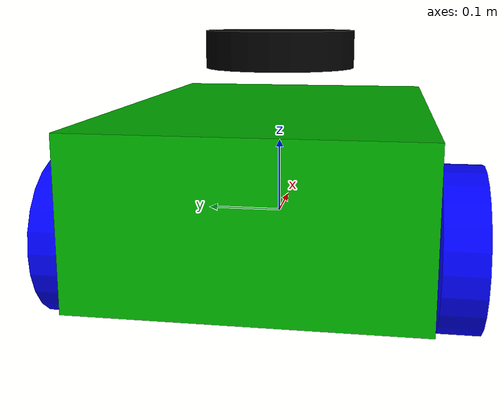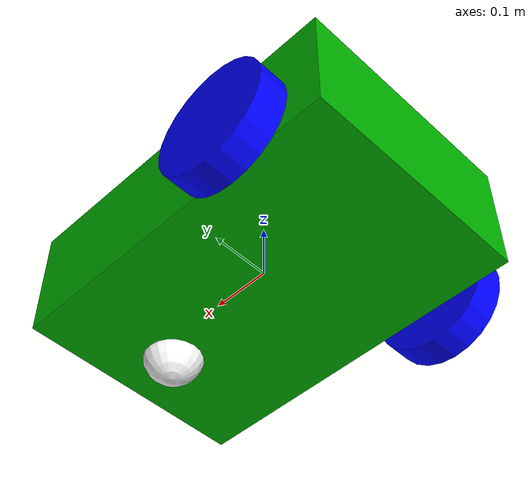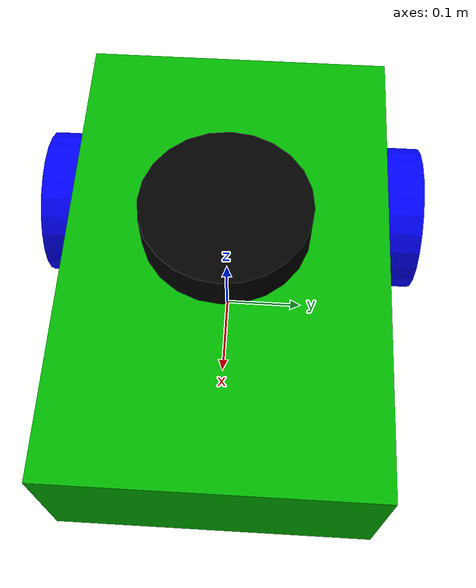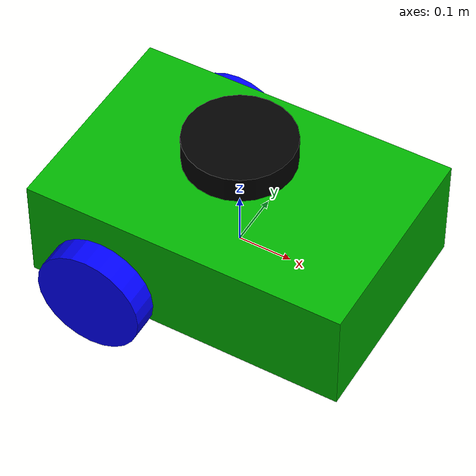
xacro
<?xml version="1.0"?>

<robot xmlns:xacro="http://www.ros.org/wiki/xacro" name="roboct" >

<!---materials definitions-->
<material name="green">
    <color rgba="0.0 0.7 0.0 1.0"/>
</material>

<material name="blue">
<color rgba="0.0 0.0 1.0 1.0"/>
</material>

<material name="red">
    <color rgba="1.0 0.0 0.0 1.0"/>
</material>

<material name="white">
    <color rgba="1.0 1.0 1.0 1.0"/>
</material>

<material name="black">
    <color rgba="0.0 0.0 0.0 1.0"/>
</material>

<!-- Define some commonly used intertial properties  -->
  <xacro:macro name="box_inertia" params="m w h d">
    <inertial>
      <origin xyz="0 0 0" rpy="${pi/2} 0 ${pi/2}"/>
      <mass value="${m}"/>
      <inertia ixx="${(m/12) * (h*h + d*d)}" ixy="0.0" ixz="0.0" iyy="${(m/12) * (w*w + d*d)}" iyz="0.0" izz="${(m/12) * (w*w + h*h)}"/>
    </inertial>
  </xacro:macro>

<!--- All Robots links with their full properties-->

<!--Base_link properties-->
<link name="base_footprint"/>

<link name="base_link">
    <visual>
        <geometry>
            <box size="0.6 0.4 0.2"/>
        </geometry>
        <origin xyz="0.0 0.0 0.05" rpy="0.0 0.0 0.0"/>
        <material name="green"/>
    </visual>

    <collision>
        <geometry>
            <box size="0.6 0.4 0.2"/>
        </geometry>
        <origin xyz="0.0 0.0 0.05" rpy="0.0 0.0 0.0"/>
    </collision>
    <xacro:box_inertia m="1.0" w="0.4" d="0.6" h="0.2"/>
</link>

<joint name="base_link_footprint_joint" type="fixed">
    <origin xyz="0.0 0.0 -0.15" rpy="0.0 0.0 0.0"/>
    <parent link="base_link"/>
    <child link="base_footprint"/>
</joint>

<!--Lidar properties-->
<link name = "lidar">
    <visual>
            <geometry>
                <cylinder radius="0.1" length="0.05"/>
            </geometry>
            <origin xyz="0.0 0.0 0.0" rpy="0.0 0.0 0.0"/>
            <material name="black"/>
    </visual>
    <collision>
        <geometry>
            <cylinder radius="0.1" length="0.05"/>
        </geometry>
    </collision>
    <inertial>
            <mass value="1.0"/>
            <origin xyz="0 0 0"/>
            <inertia ixx="0.001458" iyy="0.001458" izz="0.00125" ixy="0.0" ixz="0.0" iyz="0.0"/>
    </inertial>
</link>

<joint name="base_lidar" type="fixed">
    <origin xyz="0.0 0.0 0.225" rpy="0.0 0.0 0.0"/>
    <parent link="base_link"/>
    <child link="lidar"/>
    <axis xyz="0.0 0.0 0.0"/>
    <limit lower="0.0" upper="0.0" effort="0.0" velocity="0.0"/>
</joint>

<!--Left Wheel properties-->
<link name = "left_wheel">
    <visual>
            <geometry>
                <cylinder radius="0.1" length="0.05"/>
            </geometry>
            <origin xyz="0.0 0.0 0.0" rpy="1.57 0.0 0.0"/>
            <material name="blue"/>
    </visual>

    <collision>
        <geometry>
            <cylinder radius="0.1" length="0.05"/>
        </geometry>
        <origin xyz="0.0 0.0 0.0" rpy="1.57 0.0 0.0"/>
    </collision>
    <inertial>
            <mass value="1.0"/>
            <origin xyz="0 0 0"/>
            <inertia ixx="0.001458" iyy="0.001458" izz="0.00125" ixy="0.0" ixz="0.0" iyz="0.0"/>
    </inertial>
</link>

<joint name="base_left_wheel" type="continuous">
    <origin xyz="-0.15 0.233 0.0" rpy="0.0 0.0 0.0"/>
    <parent link="base_link"/>
    <child link="left_wheel"/>
    <axis xyz="0.0 1.0 0.0"/>
    <dynamics damping="0.2"/>
</joint>

<!--Right Wheel properties-->
<link name = "right_wheel">
    <visual>
            <geometry>
                <cylinder radius="0.1" length="0.05"/>
            </geometry>
            <origin xyz="0.0 0.0 0.0" rpy="1.57 0.0 0.0"/>
            <material name="blue"/>
    </visual>

    <collision>
        <geometry>
            <cylinder radius="0.1" length="0.05"/>
        </geometry>
        <origin xyz="0.0 0.0 0.0" rpy="1.57 0.0 0.0"/>
    </collision>
    <inertial>
            <mass value="1.0"/>
            <origin xyz="0 0 0"/>
            <inertia ixx="0.001458" iyy="0.001458" izz="0.00125" ixy="0.0" ixz="0.0" iyz="0.0"/>
    </inertial>
</link>

<joint name="base_right_wheel" type="continuous">
    <origin xyz="-0.15 -0.233 0.0" rpy="3.142 0.0 0.0"/>
    <parent link="base_link"/>
    <child link="right_wheel"/>
    <axis xyz="0.0 1.0 0.0"/>
    <dynamics damping="0.2"/>
</joint>

<!--Caster Wheel properties-->
<link name = "caster_wheel">
<visual>
        <geometry>
            <sphere radius="0.05"/>
        </geometry>
        <origin xyz="0.0 0.0 0.0" rpy="0.0 0.0 0.0"/>
        <material name="white"/>
</visual>
<collision>
        <geometry>
            <sphere radius="0.05"/>
        </geometry>
</collision>
<inertial>
    <origin xyz="0 0 0" rpy="0 0 0"/> <!-- Assume the center of mass is at the origin -->
    <mass value="1.0"/>
    <inertia ixx="0.001" ixy="0.0" ixz="0.0" iyy="0.001" iyz="0.0" izz="0.001"/>
  </inertial>
</link>

<joint name="base_caster" type="fixed">
    <origin xyz="0.2 0.0 -0.04" rpy="0.0 0.0 0.0"/>
    <parent link="base_link"/>
    <child link="caster_wheel"/>
    <axis xyz="0.0 0.0 0.0"/>
    <limit lower="0.0" upper="0.0" effort="0.0" velocity="0.0"/>
    <dynamics damping="1.0" friction="1.0"/>

</joint>

<!---IMU properties-->
<link name="imu_link">
    <visual>
      <geometry>
        <box size="0.1 0.1 0.1"/>
      </geometry>
      <material name="red"/>
    </visual>

    <collision>
      <geometry>
        <box size="0.1 0.1 0.1"/>
      </geometry>
    </collision>

    <xacro:box_inertia m="0.001" w="0.1" d="0.1" h="0.1"/>
  </link>

   <joint name="imu_joint" type="fixed">
    <parent link="base_link"/>
    <child link="imu_link"/>
    <origin xyz="0 0 0.01"/>
  </joint>

    <!--Control ad gazebo control interface-->
    <ros2_control name="IgnitionSystem" type="system">
    <hardware>
      <plugin>ign_ros2_control/IgnitionSystem</plugin>
    </hardware>
    <joint name="base_right_wheel">
      <command_interface name="velocity">
        <param name="min">-1</param>
        <param name="max">1</param>
      </command_interface>
      <state_interface name="position"/>
      <state_interface name="velocity"/>
    </joint>
    <joint name="base_left_wheel">
      <command_interface name="velocity">
        <param name="min">-1</param>
        <param name="max">1</param>
      </command_interface>
      <state_interface name="position"/>
      <state_interface name="velocity"/>
    </joint>
  </ros2_control>

  <gazebo>
    <plugin filename="ign_ros2_control-system" name="ign_ros2_control::IgnitionROS2ControlPlugin">
      <parameters>$(find testbot)/config/2w_diff_drive_controller_velocity.yaml</parameters>
    </plugin>
  </gazebo>
  <!--Camera properties-->

</robot>
